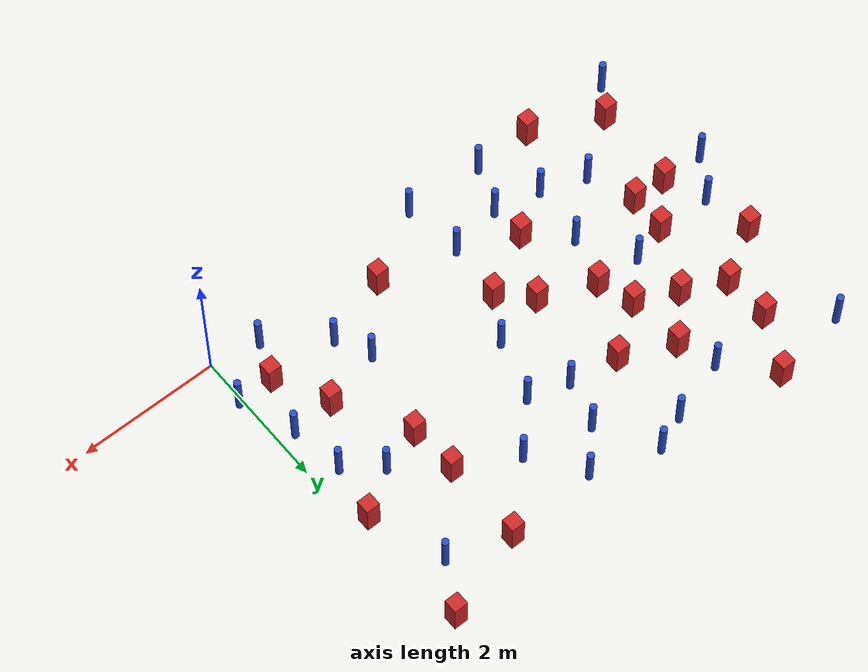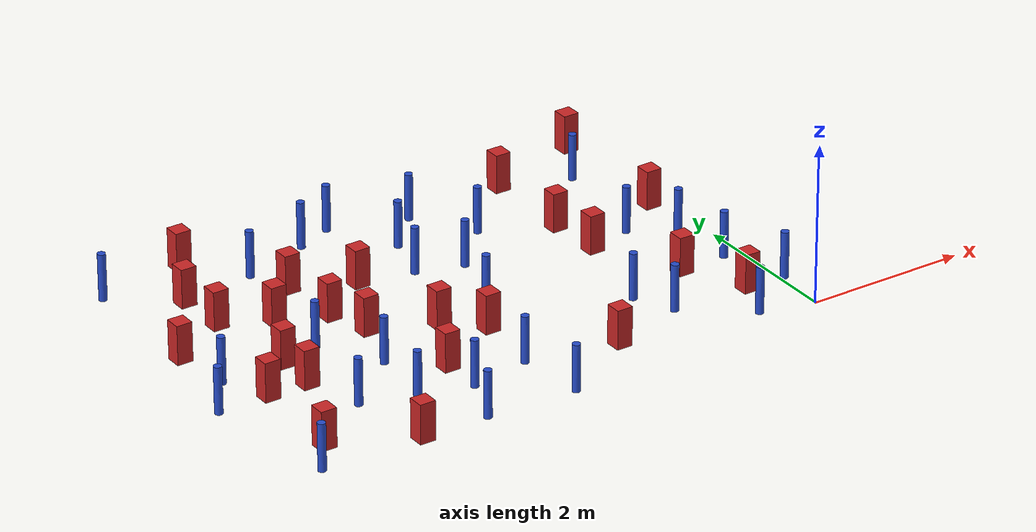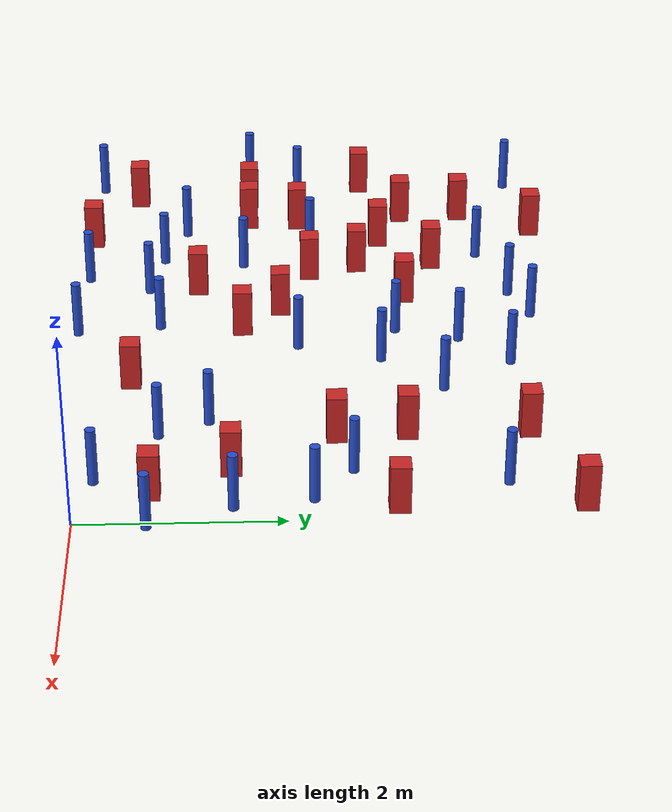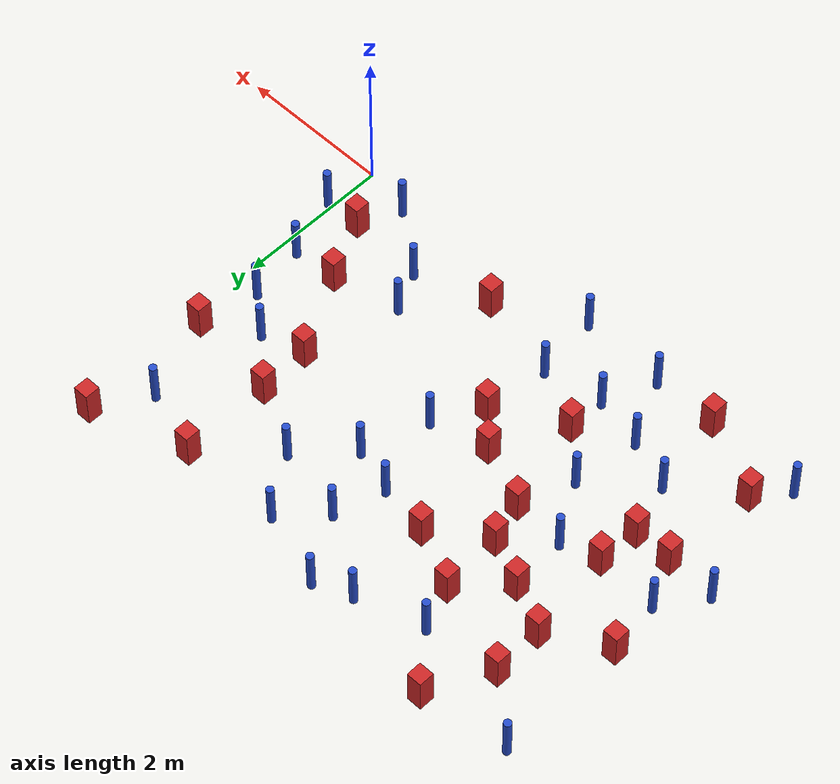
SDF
<sdf version="1.6">
 <model name="dense_94">
  <model name="pole_obstacle1">
   <static>true</static>
   <pose>-6.67899907143 -0.03429082158 -9.47619616065e-06 5.49618799737e-07 2.36310414061e-07 -1.55090534802e-07</pose>
   <link name="link">
    <pose>0 0 0.3 0 -0 0</pose>
    <inertial>
     <mass>1</mass>
     <inertia><ixx>0.145833</ixx><ixy>0</ixy><ixz>0</ixz><iyy>0.145833</iyy><iyz>0</iyz><izz>0.125</izz></inertia>
    </inertial>
    <collision name="collision">
     <geometry><cylinder><radius>0.05</radius><length>.6</length></cylinder></geometry>
    </collision>
    <visual name="visual">
     <geometry><cylinder><radius>0.05</radius><length>.6</length></cylinder></geometry>
     <material>
      <script><name>Gazebo/Blue</name><uri>file://media/materials/scripts/gazebo.material</uri></script>
     </material>
    </visual>
   </link>
  </model>
  <model name="pole_obstacle8">
   <static>true</static>
   <pose>-4.99658444194 4.15690129705 -9.47619616065e-06 5.49618799737e-07 2.36310414037e-07 -1.55090534814e-07</pose>
   <link name="link">
    <pose>0 0 0.3 0 -0 0</pose>
    <inertial>
     <mass>1</mass>
     <inertia><ixx>0.145833</ixx><ixy>0</ixy><ixz>0</ixz><iyy>0.145833</iyy><iyz>0</iyz><izz>0.125</izz></inertia>
    </inertial>
    <collision name="collision">
     <geometry><cylinder><radius>0.05</radius><length>.6</length></cylinder></geometry>
    </collision>
    <visual name="visual">
     <geometry><cylinder><radius>0.05</radius><length>.6</length></cylinder></geometry>
     <material>
      <script><name>Gazebo/Blue</name><uri>file://media/materials/scripts/gazebo.material</uri></script>
     </material>
    </visual>
   </link>
  </model>
  <model name="square_post_obstacle12">
   <static>true</static>
   <pose>-6.30929738894 1.65366719307 -6.11067671241e-07 -5.50515727128e-06 -8.79689657224e-07 2.37013304536e-05</pose>
   <link name="link">
    <pose>0 0 0.25 0 -0 0</pose>
    <inertial>
     <mass>100</mass>
     <inertia>
      <ixx>0.166667</ixx>
      <ixy>0</ixy>
      <ixz>0</ixz>
      <iyy>0.166667</iyy>
      <iyz>0</iyz>
      <izz>0.166667</izz>
     </inertia>
    </inertial>
    <collision name="collision"><geometry><box><size>.2 .2 .5</size></box></geometry></collision>
    <visual name="visual">
     <geometry><box><size>.2 .2 .5</size></box></geometry>
     <material>
      <script><name>Gazebo/Red</name><uri>file://media/materials/scripts/gazebo.material</uri></script>
     </material>
    </visual>
   </link>
  </model>
  <model name="pole_obstacle17">
   <static>true</static>
   <pose>-4.55149239938 -0.0831261099489 -9.47619616065e-06 5.49618799737e-07 2.36310414061e-07 -1.55090534801e-07</pose>
   <link name="link">
    <pose>0 0 0.3 0 -0 0</pose>
    <inertial>
     <mass>1</mass>
     <inertia><ixx>0.145833</ixx><ixy>0</ixy><ixz>0</ixz><iyy>0.145833</iyy><iyz>0</iyz><izz>0.125</izz></inertia>
    </inertial>
    <collision name="collision">
     <geometry><cylinder><radius>0.05</radius><length>.6</length></cylinder></geometry>
    </collision>
    <visual name="visual">
     <geometry><cylinder><radius>0.05</radius><length>.6</length></cylinder></geometry>
     <material>
      <script><name>Gazebo/Blue</name><uri>file://media/materials/scripts/gazebo.material</uri></script>
     </material>
    </visual>
   </link>
  </model>
  <model name="pole_obstacle27">
   <static>true</static>
   <pose>-6.67659318906 4.63356279092 -9.47619616065e-06 5.49618799737e-07 2.36310414037e-07 -1.55090534814e-07</pose>
   <link name="link">
    <pose>0 0 0.3 0 -0 0</pose>
    <inertial>
     <mass>1</mass>
     <inertia><ixx>0.145833</ixx><ixy>0</ixy><ixz>0</ixz><iyy>0.145833</iyy><iyz>0</iyz><izz>0.125</izz></inertia>
    </inertial>
    <collision name="collision">
     <geometry><cylinder><radius>0.05</radius><length>.6</length></cylinder></geometry>
    </collision>
    <visual name="visual">
     <geometry><cylinder><radius>0.05</radius><length>.6</length></cylinder></geometry>
     <material>
      <script><name>Gazebo/Blue</name><uri>file://media/materials/scripts/gazebo.material</uri></script>
     </material>
    </visual>
   </link>
  </model>
  <model name="square_post_obstacle21">
   <static>true</static>
   <pose>-6.67234045474 2.92822538496 -6.11067671241e-07 -5.50515727128e-06 -8.79689657224e-07 2.37013304536e-05</pose>
   <link name="link">
    <pose>0 0 0.25 0 -0 0</pose>
    <inertial>
     <mass>100</mass>
     <inertia>
      <ixx>0.166667</ixx>
      <ixy>0</ixy>
      <ixz>0</ixz>
      <iyy>0.166667</iyy>
      <iyz>0</iyz>
      <izz>0.166667</izz>
     </inertia>
    </inertial>
    <collision name="collision"><geometry><box><size>.2 .2 .5</size></box></geometry></collision>
    <visual name="visual">
     <geometry><box><size>.2 .2 .5</size></box></geometry>
     <material>
      <script><name>Gazebo/Red</name><uri>file://media/materials/scripts/gazebo.material</uri></script>
     </material>
    </visual>
   </link>
  </model>
  <model name="square_post_obstacle24">
   <static>true</static>
   <pose>-1.41695079501 3.17292719952 -6.11067671241e-07 -5.50515727128e-06 -8.79689657224e-07 2.37013304536e-05</pose>
   <link name="link">
    <pose>0 0 0.25 0 -0 0</pose>
    <inertial>
     <mass>100</mass>
     <inertia>
      <ixx>0.166667</ixx>
      <ixy>0</ixy>
      <ixz>0</ixz>
      <iyy>0.166667</iyy>
      <iyz>0</iyz>
      <izz>0.166667</izz>
     </inertia>
    </inertial>
    <collision name="collision"><geometry><box><size>.2 .2 .5</size></box></geometry></collision>
    <visual name="visual">
     <geometry><box><size>.2 .2 .5</size></box></geometry>
     <material>
      <script><name>Gazebo/Red</name><uri>file://media/materials/scripts/gazebo.material</uri></script>
     </material>
    </visual>
   </link>
  </model>
  <model name="pole_obstacle38">
   <static>true</static>
   <pose>-0.332241668047 2.24233493727 -9.47619616065e-06 5.49618799738e-07 2.36310414065e-07 -1.55090534798e-07</pose>
   <link name="link">
    <pose>0 0 0.3 0 -0 0</pose>
    <inertial>
     <mass>1</mass>
     <inertia><ixx>0.145833</ixx><ixy>0</ixy><ixz>0</ixz><iyy>0.145833</iyy><iyz>0</iyz><izz>0.125</izz></inertia>
    </inertial>
    <collision name="collision">
     <geometry><cylinder><radius>0.05</radius><length>.6</length></cylinder></geometry>
    </collision>
    <visual name="visual">
     <geometry><cylinder><radius>0.05</radius><length>.6</length></cylinder></geometry>
     <material>
      <script><name>Gazebo/Blue</name><uri>file://media/materials/scripts/gazebo.material</uri></script>
     </material>
    </visual>
   </link>
  </model>
  <model name="square_post_obstacle31">
   <static>true</static>
   <pose>-0.452214585797 0.706566683898 -6.11067671241e-07 -5.50515727128e-06 -8.79689657224e-07 2.37013304536e-05</pose>
   <link name="link">
    <pose>0 0 0.25 0 -0 0</pose>
    <inertial>
     <mass>100</mass>
     <inertia>
      <ixx>0.166667</ixx>
      <ixy>0</ixy>
      <ixz>0</ixz>
      <iyy>0.166667</iyy>
      <iyz>0</iyz>
      <izz>0.166667</izz>
     </inertia>
    </inertial>
    <collision name="collision"><geometry><box><size>.2 .2 .5</size></box></geometry></collision>
    <visual name="visual">
     <geometry><box><size>.2 .2 .5</size></box></geometry>
     <material>
      <script><name>Gazebo/Red</name><uri>file://media/materials/scripts/gazebo.material</uri></script>
     </material>
    </visual>
   </link>
  </model>
  <model name="pole_obstacle45">
   <static>true</static>
   <pose>-1.43768621948 0.755136957279 -9.47619616065e-06 5.49618799737e-07 2.36310414065e-07 -1.55090534798e-07</pose>
   <link name="link">
    <pose>0 0 0.3 0 -0 0</pose>
    <inertial>
     <mass>1</mass>
     <inertia><ixx>0.145833</ixx><ixy>0</ixy><ixz>0</ixz><iyy>0.145833</iyy><iyz>0</iyz><izz>0.125</izz></inertia>
    </inertial>
    <collision name="collision">
     <geometry><cylinder><radius>0.05</radius><length>.6</length></cylinder></geometry>
    </collision>
    <visual name="visual">
     <geometry><cylinder><radius>0.05</radius><length>.6</length></cylinder></geometry>
     <material>
      <script><name>Gazebo/Blue</name><uri>file://media/materials/scripts/gazebo.material</uri></script>
     </material>
    </visual>
   </link>
  </model>
  <model name="pole_obstacle47">
   <static>true</static>
   <pose>-3.51919926178 0.711389242097 -9.47619616065e-06 5.49618799737e-07 2.36310414035e-07 -1.55090534817e-07</pose>
   <link name="link">
    <pose>0 0 0.3 0 -0 0</pose>
    <inertial>
     <mass>1</mass>
     <inertia><ixx>0.145833</ixx><ixy>0</ixy><ixz>0</ixz><iyy>0.145833</iyy><iyz>0</iyz><izz>0.125</izz></inertia>
    </inertial>
    <collision name="collision">
     <geometry><cylinder><radius>0.05</radius><length>.6</length></cylinder></geometry>
    </collision>
    <visual name="visual">
     <geometry><cylinder><radius>0.05</radius><length>.6</length></cylinder></geometry>
     <material>
      <script><name>Gazebo/Blue</name><uri>file://media/materials/scripts/gazebo.material</uri></script>
     </material>
    </visual>
   </link>
  </model>
  <model name="square_post_obstacle39">
   <static>true</static>
   <pose>-0.19302434435 3.02307327508 -6.11067671241e-07 -5.50515727128e-06 -8.79689657224e-07 2.37013304536e-05</pose>
   <link name="link">
    <pose>0 0 0.25 0 -0 0</pose>
    <inertial>
     <mass>100</mass>
     <inertia>
      <ixx>0.166667</ixx>
      <ixy>0</ixy>
      <ixz>0</ixz>
      <iyy>0.166667</iyy>
      <iyz>0</iyz>
      <izz>0.166667</izz>
     </inertia>
    </inertial>
    <collision name="collision"><geometry><box><size>.2 .2 .5</size></box></geometry></collision>
    <visual name="visual">
     <geometry><box><size>.2 .2 .5</size></box></geometry>
     <material>
      <script><name>Gazebo/Red</name><uri>file://media/materials/scripts/gazebo.material</uri></script>
     </material>
    </visual>
   </link>
  </model>
  <model name="pole_obstacle51">
   <static>true</static>
   <pose>-3.66563914576 4.6199900222 -9.47619616065e-06 5.49618799738e-07 2.3631041406e-07 -1.55090534801e-07</pose>
   <link name="link">
    <pose>0 0 0.3 0 -0 0</pose>
    <inertial>
     <mass>1</mass>
     <inertia><ixx>0.145833</ixx><ixy>0</ixy><ixz>0</ixz><iyy>0.145833</iyy><iyz>0</iyz><izz>0.125</izz></inertia>
    </inertial>
    <collision name="collision">
     <geometry><cylinder><radius>0.05</radius><length>.6</length></cylinder></geometry>
    </collision>
    <visual name="visual">
     <geometry><cylinder><radius>0.05</radius><length>.6</length></cylinder></geometry>
     <material>
      <script><name>Gazebo/Blue</name><uri>file://media/materials/scripts/gazebo.material</uri></script>
     </material>
    </visual>
   </link>
  </model>
  <model name="square_post_obstacle40">
   <static>true</static>
   <pose>-4.29680795318 1.09732461644 -6.11067671241e-07 -5.50515727128e-06 -8.79689657224e-07 2.37013304536e-05</pose>
   <link name="link">
    <pose>0 0 0.25 0 -0 0</pose>
    <inertial>
     <mass>100</mass>
     <inertia>
      <ixx>0.166667</ixx>
      <ixy>0</ixy>
      <ixz>0</ixz>
      <iyy>0.166667</iyy>
      <iyz>0</iyz>
      <izz>0.166667</izz>
     </inertia>
    </inertial>
    <collision name="collision"><geometry><box><size>.2 .2 .5</size></box></geometry></collision>
    <visual name="visual">
     <geometry><box><size>.2 .2 .5</size></box></geometry>
     <material>
      <script><name>Gazebo/Red</name><uri>file://media/materials/scripts/gazebo.material</uri></script>
     </material>
    </visual>
   </link>
  </model>
  <model name="square_post_obstacle49">
   <static>true</static>
   <pose>-1.41972479286 4.36392042772 -6.11067671241e-07 -5.50515727128e-06 -8.79689657224e-07 2.37013304536e-05</pose>
   <link name="link">
    <pose>0 0 0.25 0 -0 0</pose>
    <inertial>
     <mass>100</mass>
     <inertia>
      <ixx>0.166667</ixx>
      <ixy>0</ixy>
      <ixz>0</ixz>
      <iyy>0.166667</iyy>
      <iyz>0</iyz>
      <izz>0.166667</izz>
     </inertia>
    </inertial>
    <collision name="collision"><geometry><box><size>.2 .2 .5</size></box></geometry></collision>
    <visual name="visual">
     <geometry><box><size>.2 .2 .5</size></box></geometry>
     <material>
      <script><name>Gazebo/Red</name><uri>file://media/materials/scripts/gazebo.material</uri></script>
     </material>
    </visual>
   </link>
  </model>
  <model name="pole_obstacle68">
   <static>true</static>
   <pose>-3.41489756486 -0.145336458099 -9.47619616065e-06 5.49618799738e-07 2.36310414078e-07 -1.55090534791e-07</pose>
   <link name="link">
    <pose>0 0 0.3 0 -0 0</pose>
    <inertial>
     <mass>1</mass>
     <inertia><ixx>0.145833</ixx><ixy>0</ixy><ixz>0</ixz><iyy>0.145833</iyy><iyz>0</iyz><izz>0.125</izz></inertia>
    </inertial>
    <collision name="collision">
     <geometry><cylinder><radius>0.05</radius><length>.6</length></cylinder></geometry>
    </collision>
    <visual name="visual">
     <geometry><cylinder><radius>0.05</radius><length>.6</length></cylinder></geometry>
     <material>
      <script><name>Gazebo/Blue</name><uri>file://media/materials/scripts/gazebo.material</uri></script>
     </material>
    </visual>
   </link>
  </model>
  <model name="square_post_obstacle55">
   <static>true</static>
   <pose>-3.83360552042 1.97416597039 -6.11067671241e-07 -5.50515727128e-06 -8.79689657224e-07 2.37013304536e-05</pose>
   <link name="link">
    <pose>0 0 0.25 0 -0 0</pose>
    <inertial>
     <mass>100</mass>
     <inertia>
      <ixx>0.166667</ixx>
      <ixy>0</ixy>
      <ixz>0</ixz>
      <iyy>0.166667</iyy>
      <iyz>0</iyz>
      <izz>0.166667</izz>
     </inertia>
    </inertial>
    <collision name="collision"><geometry><box><size>.2 .2 .5</size></box></geometry></collision>
    <visual name="visual">
     <geometry><box><size>.2 .2 .5</size></box></geometry>
     <material>
      <script><name>Gazebo/Red</name><uri>file://media/materials/scripts/gazebo.material</uri></script>
     </material>
    </visual>
   </link>
  </model>
  <model name="square_post_obstacle61">
   <static>true</static>
   <pose>-5.80478401775 1.64565441938 -6.11067671241e-07 -5.50515727128e-06 -8.79689657224e-07 2.37013304536e-05</pose>
   <link name="link">
    <pose>0 0 0.25 0 -0 0</pose>
    <inertial>
     <mass>100</mass>
     <inertia>
      <ixx>0.166667</ixx>
      <ixy>0</ixy>
      <ixz>0</ixz>
      <iyy>0.166667</iyy>
      <iyz>0</iyz>
      <izz>0.166667</izz>
     </inertia>
    </inertial>
    <collision name="collision"><geometry><box><size>.2 .2 .5</size></box></geometry></collision>
    <visual name="visual">
     <geometry><box><size>.2 .2 .5</size></box></geometry>
     <material>
      <script><name>Gazebo/Red</name><uri>file://media/materials/scripts/gazebo.material</uri></script>
     </material>
    </visual>
   </link>
  </model>
  <model name="pole_obstacle73">
   <static>true</static>
   <pose>-4.13509545801 4.42776585676 -9.47619616065e-06 5.49618799737e-07 2.36310414037e-07 -1.55090534814e-07</pose>
   <link name="link">
    <pose>0 0 0.3 0 -0 0</pose>
    <inertial>
     <mass>1</mass>
     <inertia><ixx>0.145833</ixx><ixy>0</ixy><ixz>0</ixz><iyy>0.145833</iyy><iyz>0</iyz><izz>0.125</izz></inertia>
    </inertial>
    <collision name="collision">
     <geometry><cylinder><radius>0.05</radius><length>.6</length></cylinder></geometry>
    </collision>
    <visual name="visual">
     <geometry><cylinder><radius>0.05</radius><length>.6</length></cylinder></geometry>
     <material>
      <script><name>Gazebo/Blue</name><uri>file://media/materials/scripts/gazebo.material</uri></script>
     </material>
    </visual>
   </link>
  </model>
  <model name="square_post_obstacle64">
   <static>true</static>
   <pose>-0.829074811675 1.46560681043 -6.11067671241e-07 -5.50515727128e-06 -8.79689657224e-07 2.37013304536e-05</pose>
   <link name="link">
    <pose>0 0 0.25 0 -0 0</pose>
    <inertial>
     <mass>100</mass>
     <inertia>
      <ixx>0.166667</ixx>
      <ixy>0</ixy>
      <ixz>0</ixz>
      <iyy>0.166667</iyy>
      <iyz>0</iyz>
      <izz>0.166667</izz>
     </inertia>
    </inertial>
    <collision name="collision"><geometry><box><size>.2 .2 .5</size></box></geometry></collision>
    <visual name="visual">
     <geometry><box><size>.2 .2 .5</size></box></geometry>
     <material>
      <script><name>Gazebo/Red</name><uri>file://media/materials/scripts/gazebo.material</uri></script>
     </material>
    </visual>
   </link>
  </model>
  <model name="pole_obstacle79">
   <static>true</static>
   <pose>-2.71934926652 4.31471729502 -9.47619616065e-06 5.49618799738e-07 2.3631041406e-07 -1.55090534801e-07</pose>
   <link name="link">
    <pose>0 0 0.3 0 -0 0</pose>
    <inertial>
     <mass>1</mass>
     <inertia><ixx>0.145833</ixx><ixy>0</ixy><ixz>0</ixz><iyy>0.145833</iyy><iyz>0</iyz><izz>0.125</izz></inertia>
    </inertial>
    <collision name="collision">
     <geometry><cylinder><radius>0.05</radius><length>.6</length></cylinder></geometry>
    </collision>
    <visual name="visual">
     <geometry><cylinder><radius>0.05</radius><length>.6</length></cylinder></geometry>
     <material>
      <script><name>Gazebo/Blue</name><uri>file://media/materials/scripts/gazebo.material</uri></script>
     </material>
    </visual>
   </link>
  </model>
  <model name="pole_obstacle80">
   <static>true</static>
   <pose>-6.95278286174 1.65966395448 -9.47619616065e-06 5.49618799738e-07 2.36310414071e-07 -1.55090534796e-07</pose>
   <link name="link">
    <pose>0 0 0.3 0 -0 0</pose>
    <inertial>
     <mass>1</mass>
     <inertia><ixx>0.145833</ixx><ixy>0</ixy><ixz>0</ixz><iyy>0.145833</iyy><iyz>0</iyz><izz>0.125</izz></inertia>
    </inertial>
    <collision name="collision">
     <geometry><cylinder><radius>0.05</radius><length>.6</length></cylinder></geometry>
    </collision>
    <visual name="visual">
     <geometry><cylinder><radius>0.05</radius><length>.6</length></cylinder></geometry>
     <material>
      <script><name>Gazebo/Blue</name><uri>file://media/materials/scripts/gazebo.material</uri></script>
     </material>
    </visual>
   </link>
  </model>
  <model name="square_post_obstacle69">
   <static>true</static>
   <pose>-2.40745957402 0.452171727759 -6.11067671241e-07 -5.50515727128e-06 -8.79689657224e-07 2.37013304536e-05</pose>
   <link name="link">
    <pose>0 0 0.25 0 -0 0</pose>
    <inertial>
     <mass>100</mass>
     <inertia>
      <ixx>0.166667</ixx>
      <ixy>0</ixy>
      <ixz>0</ixz>
      <iyy>0.166667</iyy>
      <iyz>0</iyz>
      <izz>0.166667</izz>
     </inertia>
    </inertial>
    <collision name="collision"><geometry><box><size>.2 .2 .5</size></box></geometry></collision>
    <visual name="visual">
     <geometry><box><size>.2 .2 .5</size></box></geometry>
     <material>
      <script><name>Gazebo/Red</name><uri>file://media/materials/scripts/gazebo.material</uri></script>
     </material>
    </visual>
   </link>
  </model>
  <model name="pole_obstacle81">
   <static>true</static>
   <pose>-4.82914749725 1.5846387453 -9.47619616065e-06 5.49618799738e-07 2.36310414071e-07 -1.55090534796e-07</pose>
   <link name="link">
    <pose>0 0 0.3 0 -0 0</pose>
    <inertial>
     <mass>1</mass>
     <inertia><ixx>0.145833</ixx><ixy>0</ixy><ixz>0</ixz><iyy>0.145833</iyy><iyz>0</iyz><izz>0.125</izz></inertia>
    </inertial>
    <collision name="collision">
     <geometry><cylinder><radius>0.05</radius><length>.6</length></cylinder></geometry>
    </collision>
    <visual name="visual">
     <geometry><cylinder><radius>0.05</radius><length>.6</length></cylinder></geometry>
     <material>
      <script><name>Gazebo/Blue</name><uri>file://media/materials/scripts/gazebo.material</uri></script>
     </material>
    </visual>
   </link>
  </model>
  <model name="pole_obstacle83">
   <static>true</static>
   <pose>-2.2327138329 3.59456700948 -9.47619616065e-06 5.49618799737e-07 2.36310414051e-07 -1.55090534807e-07</pose>
   <link name="link">
    <pose>0 0 0.3 0 -0 0</pose>
    <inertial>
     <mass>1</mass>
     <inertia><ixx>0.145833</ixx><ixy>0</ixy><ixz>0</ixz><iyy>0.145833</iyy><iyz>0</iyz><izz>0.125</izz></inertia>
    </inertial>
    <collision name="collision">
     <geometry><cylinder><radius>0.05</radius><length>.6</length></cylinder></geometry>
    </collision>
    <visual name="visual">
     <geometry><cylinder><radius>0.05</radius><length>.6</length></cylinder></geometry>
     <material>
      <script><name>Gazebo/Blue</name><uri>file://media/materials/scripts/gazebo.material</uri></script>
     </material>
    </visual>
   </link>
  </model>
  <model name="square_post_obstacle73">
   <static>true</static>
   <pose>-5.40141067775 -0.0803570759664 -6.11067671241e-07 -5.50515727128e-06 -8.79689657224e-07 2.37013304536e-05</pose>
   <link name="link">
    <pose>0 0 0.25 0 -0 0</pose>
    <inertial>
     <mass>100</mass>
     <inertia>
      <ixx>0.166667</ixx>
      <ixy>0</ixy>
      <ixz>0</ixz>
      <iyy>0.166667</iyy>
      <iyz>0</iyz>
      <izz>0.166667</izz>
     </inertia>
    </inertial>
    <collision name="collision"><geometry><box><size>.2 .2 .5</size></box></geometry></collision>
    <visual name="visual">
     <geometry><box><size>.2 .2 .5</size></box></geometry>
     <material>
      <script><name>Gazebo/Red</name><uri>file://media/materials/scripts/gazebo.material</uri></script>
     </material>
    </visual>
   </link>
  </model>
  <model name="square_post_obstacle86">
   <static>true</static>
   <pose>-5.54675294454 4.80907476312 -6.11067671241e-07 -5.50515727128e-06 -8.79689657224e-07 2.37013304536e-05</pose>
   <link name="link">
    <pose>0 0 0.25 0 -0 0</pose>
    <inertial>
     <mass>100</mass>
     <inertia>
      <ixx>0.166667</ixx>
      <ixy>0</ixy>
      <ixz>0</ixz>
      <iyy>0.166667</iyy>
      <iyz>0</iyz>
      <izz>0.166667</izz>
     </inertia>
    </inertial>
    <collision name="collision"><geometry><box><size>.2 .2 .5</size></box></geometry></collision>
    <visual name="visual">
     <geometry><box><size>.2 .2 .5</size></box></geometry>
     <material>
      <script><name>Gazebo/Red</name><uri>file://media/materials/scripts/gazebo.material</uri></script>
     </material>
    </visual>
   </link>
  </model>
  <model name="pole_obstacle98">
   <static>true</static>
   <pose>-3.38269192491 3.16837766189 -9.47619616065e-06 5.49618799737e-07 2.36310414067e-07 -1.55090534797e-07</pose>
   <link name="link">
    <pose>0 0 0.3 0 -0 0</pose>
    <inertial>
     <mass>1</mass>
     <inertia><ixx>0.145833</ixx><ixy>0</ixy><ixz>0</ixz><iyy>0.145833</iyy><iyz>0</iyz><izz>0.125</izz></inertia>
    </inertial>
    <collision name="collision">
     <geometry><cylinder><radius>0.05</radius><length>.6</length></cylinder></geometry>
    </collision>
    <visual name="visual">
     <geometry><cylinder><radius>0.05</radius><length>.6</length></cylinder></geometry>
     <material>
      <script><name>Gazebo/Blue</name><uri>file://media/materials/scripts/gazebo.material</uri></script>
     </material>
    </visual>
   </link>
  </model>
  <model name="square_post_obstacle95">
   <static>true</static>
   <pose>-4.75753028642 2.81975104585 -6.11067671241e-07 -5.50515727128e-06 -8.79689657224e-07 2.37013304536e-05</pose>
   <link name="link">
    <pose>0 0 0.25 0 -0 0</pose>
    <inertial>
     <mass>100</mass>
     <inertia>
      <ixx>0.166667</ixx>
      <ixy>0</ixy>
      <ixz>0</ixz>
      <iyy>0.166667</iyy>
      <iyz>0</iyz>
      <izz>0.166667</izz>
     </inertia>
    </inertial>
    <collision name="collision"><geometry><box><size>.2 .2 .5</size></box></geometry></collision>
    <visual name="visual">
     <geometry><box><size>.2 .2 .5</size></box></geometry>
     <material>
      <script><name>Gazebo/Red</name><uri>file://media/materials/scripts/gazebo.material</uri></script>
     </material>
    </visual>
   </link>
  </model>
  <model name="square_post_obstacle99">
   <static>true</static>
   <pose>-1.37548124904 2.48120669292 -6.11067671241e-07 -5.50515727128e-06 -8.79689657224e-07 2.37013304536e-05</pose>
   <link name="link">
    <pose>0 0 0.25 0 -0 0</pose>
    <inertial>
     <mass>100</mass>
     <inertia>
      <ixx>0.166667</ixx>
      <ixy>0</ixy>
      <ixz>0</ixz>
      <iyy>0.166667</iyy>
      <iyz>0</iyz>
      <izz>0.166667</izz>
     </inertia>
    </inertial>
    <collision name="collision"><geometry><box><size>.2 .2 .5</size></box></geometry></collision>
    <visual name="visual">
     <geometry><box><size>.2 .2 .5</size></box></geometry>
     <material>
      <script><name>Gazebo/Red</name><uri>file://media/materials/scripts/gazebo.material</uri></script>
     </material>
    </visual>
   </link>
  </model>
  <model name="square_post_obstacle109">
   <static>true</static>
   <pose>-3.43258573546 1.57280296657 -6.11067671241e-07 -5.50515727128e-06 -8.79689657224e-07 2.37013304536e-05</pose>
   <link name="link">
    <pose>0 0 0.25 0 -0 0</pose>
    <inertial>
     <mass>100</mass>
     <inertia>
      <ixx>0.166667</ixx>
      <ixy>0</ixy>
      <ixz>0</ixz>
      <iyy>0.166667</iyy>
      <iyz>0</iyz>
      <izz>0.166667</izz>
     </inertia>
    </inertial>
    <collision name="collision"><geometry><box><size>.2 .2 .5</size></box></geometry></collision>
    <visual name="visual">
     <geometry><box><size>.2 .2 .5</size></box></geometry>
     <material>
      <script><name>Gazebo/Red</name><uri>file://media/materials/scripts/gazebo.material</uri></script>
     </material>
    </visual>
   </link>
  </model>
  <model name="square_post_obstacle115">
   <static>true</static>
   <pose>-5.77399974855 2.19103869768 -6.11067671241e-07 -5.50515727128e-06 -8.79689657224e-07 2.37013304536e-05</pose>
   <link name="link">
    <pose>0 0 0.25 0 -0 0</pose>
    <inertial>
     <mass>100</mass>
     <inertia>
      <ixx>0.166667</ixx>
      <ixy>0</ixy>
      <ixz>0</ixz>
      <iyy>0.166667</iyy>
      <iyz>0</iyz>
      <izz>0.166667</izz>
     </inertia>
    </inertial>
    <collision name="collision"><geometry><box><size>.2 .2 .5</size></box></geometry></collision>
    <visual name="visual">
     <geometry><box><size>.2 .2 .5</size></box></geometry>
     <material>
      <script><name>Gazebo/Red</name><uri>file://media/materials/scripts/gazebo.material</uri></script>
     </material>
    </visual>
   </link>
  </model>
  <model name="pole_obstacle130">
   <static>true</static>
   <pose>-3.07951397155 2.14901054969 -9.47619616065e-06 5.49618799737e-07 2.36310414051e-07 -1.55090534807e-07</pose>
   <link name="link">
    <pose>0 0 0.3 0 -0 0</pose>
    <inertial>
     <mass>1</mass>
     <inertia><ixx>0.145833</ixx><ixy>0</ixy><ixz>0</ixz><iyy>0.145833</iyy><iyz>0</iyz><izz>0.125</izz></inertia>
    </inertial>
    <collision name="collision">
     <geometry><cylinder><radius>0.05</radius><length>.6</length></cylinder></geometry>
    </collision>
    <visual name="visual">
     <geometry><cylinder><radius>0.05</radius><length>.6</length></cylinder></geometry>
     <material>
      <script><name>Gazebo/Blue</name><uri>file://media/materials/scripts/gazebo.material</uri></script>
     </material>
    </visual>
   </link>
  </model>
  <model name="pole_obstacle133">
   <static>true</static>
   <pose>-0.561178136469 4.07933280669 -9.47619616065e-06 5.49618799737e-07 2.36310414065e-07 -1.55090534796e-07</pose>
   <link name="link">
    <pose>0 0 0.3 0 -0 0</pose>
    <inertial>
     <mass>1</mass>
     <inertia><ixx>0.145833</ixx><ixy>0</ixy><ixz>0</ixz><iyy>0.145833</iyy><iyz>0</iyz><izz>0.125</izz></inertia>
    </inertial>
    <collision name="collision">
     <geometry><cylinder><radius>0.05</radius><length>.6</length></cylinder></geometry>
    </collision>
    <visual name="visual">
     <geometry><cylinder><radius>0.05</radius><length>.6</length></cylinder></geometry>
     <material>
      <script><name>Gazebo/Blue</name><uri>file://media/materials/scripts/gazebo.material</uri></script>
     </material>
    </visual>
   </link>
  </model>
  <model name="square_post_obstacle133">
   <static>true</static>
   <pose>-0.177938408902 4.75565873523 -6.11067671241e-07 -5.50515727128e-06 -8.79689657224e-07 2.37013304536e-05</pose>
   <link name="link">
    <pose>0 0 0.25 0 -0 0</pose>
    <inertial>
     <mass>100</mass>
     <inertia>
      <ixx>0.166667</ixx>
      <ixy>0</ixy>
      <ixz>0</ixz>
      <iyy>0.166667</iyy>
      <iyz>0</iyz>
      <izz>0.166667</izz>
     </inertia>
    </inertial>
    <collision name="collision"><geometry><box><size>.2 .2 .5</size></box></geometry></collision>
    <visual name="visual">
     <geometry><box><size>.2 .2 .5</size></box></geometry>
     <material>
      <script><name>Gazebo/Red</name><uri>file://media/materials/scripts/gazebo.material</uri></script>
     </material>
    </visual>
   </link>
  </model>
  <model name="pole_obstacle137">
   <static>true</static>
   <pose>-1.66997476986 1.24416694228 -9.47619616065e-06 5.49618799737e-07 2.36310414065e-07 -1.55090534798e-07</pose>
   <link name="link">
    <pose>0 0 0.3 0 -0 0</pose>
    <inertial>
     <mass>1</mass>
     <inertia><ixx>0.145833</ixx><ixy>0</ixy><ixz>0</ixz><iyy>0.145833</iyy><iyz>0</iyz><izz>0.125</izz></inertia>
    </inertial>
    <collision name="collision">
     <geometry><cylinder><radius>0.05</radius><length>.6</length></cylinder></geometry>
    </collision>
    <visual name="visual">
     <geometry><cylinder><radius>0.05</radius><length>.6</length></cylinder></geometry>
     <material>
      <script><name>Gazebo/Blue</name><uri>file://media/materials/scripts/gazebo.material</uri></script>
     </material>
    </visual>
   </link>
  </model>
  <model name="pole_obstacle139">
   <static>true</static>
   <pose>0.0615420245437 0.689907572316 -9.47619616065e-06 5.49618799737e-07 2.36310414057e-07 -1.55090534801e-07</pose>
   <link name="link">
    <pose>0 0 0.3 0 -0 0</pose>
    <inertial>
     <mass>1</mass>
     <inertia><ixx>0.145833</ixx><ixy>0</ixy><ixz>0</ixz><iyy>0.145833</iyy><iyz>0</iyz><izz>0.125</izz></inertia>
    </inertial>
    <collision name="collision">
     <geometry><cylinder><radius>0.05</radius><length>.6</length></cylinder></geometry>
    </collision>
    <visual name="visual">
     <geometry><cylinder><radius>0.05</radius><length>.6</length></cylinder></geometry>
     <material>
      <script><name>Gazebo/Blue</name><uri>file://media/materials/scripts/gazebo.material</uri></script>
     </material>
    </visual>
   </link>
  </model>
  <model name="pole_obstacle142">
   <static>true</static>
   <pose>-0.671343791677 0.166572233977 -9.47619616065e-06 5.49618799737e-07 2.36310414066e-07 -1.55090534796e-07</pose>
   <link name="link">
    <pose>0 0 0.3 0 -0 0</pose>
    <inertial>
     <mass>1</mass>
     <inertia><ixx>0.145833</ixx><ixy>0</ixy><ixz>0</ixz><iyy>0.145833</iyy><iyz>0</iyz><izz>0.125</izz></inertia>
    </inertial>
    <collision name="collision">
     <geometry><cylinder><radius>0.05</radius><length>.6</length></cylinder></geometry>
    </collision>
    <visual name="visual">
     <geometry><cylinder><radius>0.05</radius><length>.6</length></cylinder></geometry>
     <material>
      <script><name>Gazebo/Blue</name><uri>file://media/materials/scripts/gazebo.material</uri></script>
     </material>
    </visual>
   </link>
  </model>
  <model name="pole_obstacle145">
   <static>true</static>
   <pose>-4.94904557268 0.719263074853 -9.47619616065e-06 5.49618799737e-07 2.36310414061e-07 -1.550905348e-07</pose>
   <link name="link">
    <pose>0 0 0.3 0 -0 0</pose>
    <inertial>
     <mass>1</mass>
     <inertia><ixx>0.145833</ixx><ixy>0</ixy><ixz>0</ixz><iyy>0.145833</iyy><iyz>0</iyz><izz>0.125</izz></inertia>
    </inertial>
    <collision name="collision">
     <geometry><cylinder><radius>0.05</radius><length>.6</length></cylinder></geometry>
    </collision>
    <visual name="visual">
     <geometry><cylinder><radius>0.05</radius><length>.6</length></cylinder></geometry>
     <material>
      <script><name>Gazebo/Blue</name><uri>file://media/materials/scripts/gazebo.material</uri></script>
     </material>
    </visual>
   </link>
  </model>
  <model name="square_post_obstacle142">
   <static>true</static>
   <pose>-4.60038494872 2.30065681788 -6.11067671241e-07 -5.50515727128e-06 -8.79689657224e-07 2.37013304536e-05</pose>
   <link name="link">
    <pose>0 0 0.25 0 -0 0</pose>
    <inertial>
     <mass>100</mass>
     <inertia>
      <ixx>0.166667</ixx>
      <ixy>0</ixy>
      <ixz>0</ixz>
      <iyy>0.166667</iyy>
      <iyz>0</iyz>
      <izz>0.166667</izz>
     </inertia>
    </inertial>
    <collision name="collision"><geometry><box><size>.2 .2 .5</size></box></geometry></collision>
    <visual name="visual">
     <geometry><box><size>.2 .2 .5</size></box></geometry>
     <material>
      <script><name>Gazebo/Red</name><uri>file://media/materials/scripts/gazebo.material</uri></script>
     </material>
    </visual>
   </link>
  </model>
  <model name="pole_obstacle156">
   <static>true</static>
   <pose>-6.57302338177 2.21254058671 -9.47619616065e-06 5.49618799738e-07 2.36310414051e-07 -1.55090534805e-07</pose>
   <link name="link">
    <pose>0 0 0.3 0 -0 0</pose>
    <inertial>
     <mass>1</mass>
     <inertia><ixx>0.145833</ixx><ixy>0</ixy><ixz>0</ixz><iyy>0.145833</iyy><iyz>0</iyz><izz>0.125</izz></inertia>
    </inertial>
    <collision name="collision">
     <geometry><cylinder><radius>0.05</radius><length>.6</length></cylinder></geometry>
    </collision>
    <visual name="visual">
     <geometry><cylinder><radius>0.05</radius><length>.6</length></cylinder></geometry>
     <material>
      <script><name>Gazebo/Blue</name><uri>file://media/materials/scripts/gazebo.material</uri></script>
     </material>
    </visual>
   </link>
  </model>
  <model name="pole_obstacle160">
   <static>true</static>
   <pose>-5.27182141052 2.32277845484 -9.47619616065e-06 5.49618799738e-07 2.36310414051e-07 -1.55090534805e-07</pose>
   <link name="link">
    <pose>0 0 0.3 0 -0 0</pose>
    <inertial>
     <mass>1</mass>
     <inertia><ixx>0.145833</ixx><ixy>0</ixy><ixz>0</ixz><iyy>0.145833</iyy><iyz>0</iyz><izz>0.125</izz></inertia>
    </inertial>
    <collision name="collision">
     <geometry><cylinder><radius>0.05</radius><length>.6</length></cylinder></geometry>
    </collision>
    <visual name="visual">
     <geometry><cylinder><radius>0.05</radius><length>.6</length></cylinder></geometry>
     <material>
      <script><name>Gazebo/Blue</name><uri>file://media/materials/scripts/gazebo.material</uri></script>
     </material>
    </visual>
   </link>
  </model>
  <model name="square_post_obstacle156">
   <static>true</static>
   <pose>-5.92648466978 3.36571086974 -6.11067671241e-07 -5.50515727128e-06 -8.79689657224e-07 2.37013304536e-05</pose>
   <link name="link">
    <pose>0 0 0.25 0 -0 0</pose>
    <inertial>
     <mass>100</mass>
     <inertia>
      <ixx>0.166667</ixx>
      <ixy>0</ixy>
      <ixz>0</ixz>
      <iyy>0.166667</iyy>
      <iyz>0</iyz>
      <izz>0.166667</izz>
     </inertia>
    </inertial>
    <collision name="collision"><geometry><box><size>.2 .2 .5</size></box></geometry></collision>
    <visual name="visual">
     <geometry><box><size>.2 .2 .5</size></box></geometry>
     <material>
      <script><name>Gazebo/Red</name><uri>file://media/materials/scripts/gazebo.material</uri></script>
     </material>
    </visual>
   </link>
  </model>
  <model name="square_post_obstacle162">
   <static>true</static>
   <pose>-5.94903880034 4.0279035705 -6.11067671241e-07 -5.50515727128e-06 -8.79689657224e-07 2.37013304536e-05</pose>
   <link name="link">
    <pose>0 0 0.25 0 -0 0</pose>
    <inertial>
     <mass>100</mass>
     <inertia>
      <ixx>0.166667</ixx>
      <ixy>0</ixy>
      <ixz>0</ixz>
      <iyy>0.166667</iyy>
      <iyz>0</iyz>
      <izz>0.166667</izz>
     </inertia>
    </inertial>
    <collision name="collision"><geometry><box><size>.2 .2 .5</size></box></geometry></collision>
    <visual name="visual">
     <geometry><box><size>.2 .2 .5</size></box></geometry>
     <material>
      <script><name>Gazebo/Red</name><uri>file://media/materials/scripts/gazebo.material</uri></script>
     </material>
    </visual>
   </link>
  </model>
  <model name="square_post_obstacle165">
   <static>true</static>
   <pose>-5.33637763638 3.08195783267 -6.11067671241e-07 -5.50515727128e-06 -8.79689657224e-07 2.37013304536e-05</pose>
   <link name="link">
    <pose>0 0 0.25 0 -0 0</pose>
    <inertial>
     <mass>100</mass>
     <inertia>
      <ixx>0.166667</ixx>
      <ixy>0</ixy>
      <ixz>0</ixz>
      <iyy>0.166667</iyy>
      <iyz>0</iyz>
      <izz>0.166667</izz>
     </inertia>
    </inertial>
    <collision name="collision"><geometry><box><size>.2 .2 .5</size></box></geometry></collision>
    <visual name="visual">
     <geometry><box><size>.2 .2 .5</size></box></geometry>
     <material>
      <script><name>Gazebo/Red</name><uri>file://media/materials/scripts/gazebo.material</uri></script>
     </material>
    </visual>
   </link>
  </model>
  <model name="square_post_obstacle170">
   <static>true</static>
   <pose>-4.07381450474 3.29892910013 -6.11067671241e-07 -5.50515727128e-06 -8.79689657224e-07 2.37013304536e-05</pose>
   <link name="link">
    <pose>0 0 0.25 0 -0 0</pose>
    <inertial>
     <mass>100</mass>
     <inertia>
      <ixx>0.166667</ixx>
      <ixy>0</ixy>
      <ixz>0</ixz>
      <iyy>0.166667</iyy>
      <iyz>0</iyz>
      <izz>0.166667</izz>
     </inertia>
    </inertial>
    <collision name="collision"><geometry><box><size>.2 .2 .5</size></box></geometry></collision>
    <visual name="visual">
     <geometry><box><size>.2 .2 .5</size></box></geometry>
     <material>
      <script><name>Gazebo/Red</name><uri>file://media/materials/scripts/gazebo.material</uri></script>
     </material>
    </visual>
   </link>
  </model>
  <model name="square_post_obstacle180">
   <static>true</static>
   <pose>-6.37635182449 0.393923525514 -6.11067671241e-07 -5.50515727128e-06 -8.79689657224e-07 2.37013304536e-05</pose>
   <link name="link">
    <pose>0 0 0.25 0 -0 0</pose>
    <inertial>
     <mass>100</mass>
     <inertia>
      <ixx>0.166667</ixx>
      <ixy>0</ixy>
      <ixz>0</ixz>
      <iyy>0.166667</iyy>
      <iyz>0</iyz>
      <izz>0.166667</izz>
     </inertia>
    </inertial>
    <collision name="collision"><geometry><box><size>.2 .2 .5</size></box></geometry></collision>
    <visual name="visual">
     <geometry><box><size>.2 .2 .5</size></box></geometry>
     <material>
      <script><name>Gazebo/Red</name><uri>file://media/materials/scripts/gazebo.material</uri></script>
     </material>
    </visual>
   </link>
  </model>
  <model name="pole_obstacle189">
   <static>true</static>
   <pose>-2.80910351754 2.99186385845 -9.47619616065e-06 5.49618799737e-07 2.36310414051e-07 -1.55090534807e-07</pose>
   <link name="link">
    <pose>0 0 0.3 0 -0 0</pose>
    <inertial>
     <mass>1</mass>
     <inertia><ixx>0.145833</ixx><ixy>0</ixy><ixz>0</ixz><iyy>0.145833</iyy><iyz>0</iyz><izz>0.125</izz></inertia>
    </inertial>
    <collision name="collision">
     <geometry><cylinder><radius>0.05</radius><length>.6</length></cylinder></geometry>
    </collision>
    <visual name="visual">
     <geometry><cylinder><radius>0.05</radius><length>.6</length></cylinder></geometry>
     <material>
      <script><name>Gazebo/Blue</name><uri>file://media/materials/scripts/gazebo.material</uri></script>
     </material>
    </visual>
   </link>
  </model>
  <model name="square_post_obstacle205">
   <static>true</static>
   <pose>-4.80511974271 3.63606771935 -6.11067671241e-07 -5.50515727128e-06 -8.79689657224e-07 2.37013304536e-05</pose>
   <link name="link">
    <pose>0 0 0.25 0 -0 0</pose>
    <inertial>
     <mass>100</mass>
     <inertia>
      <ixx>0.166667</ixx>
      <ixy>0</ixy>
      <ixz>0</ixz>
      <iyy>0.166667</iyy>
      <iyz>0</iyz>
      <izz>0.166667</izz>
     </inertia>
    </inertial>
    <collision name="collision"><geometry><box><size>.2 .2 .5</size></box></geometry></collision>
    <visual name="visual">
     <geometry><box><size>.2 .2 .5</size></box></geometry>
     <material>
      <script><name>Gazebo/Red</name><uri>file://media/materials/scripts/gazebo.material</uri></script>
     </material>
    </visual>
   </link>
  </model>
  <model name="pole_obstacle195">
   <static>true</static>
   <pose>-4.28554416882 0.573074767534 -9.47619616065e-06 5.49618799737e-07 2.36310414061e-07 -1.550905348e-07</pose>
   <link name="link">
    <pose>0 0 0.3 0 -0 0</pose>
    <inertial>
     <mass>1</mass>
     <inertia><ixx>0.145833</ixx><ixy>0</ixy><ixz>0</ixz><iyy>0.145833</iyy><iyz>0</iyz><izz>0.125</izz></inertia>
    </inertial>
    <collision name="collision">
     <geometry><cylinder><radius>0.05</radius><length>.6</length></cylinder></geometry>
    </collision>
    <visual name="visual">
     <geometry><cylinder><radius>0.05</radius><length>.6</length></cylinder></geometry>
     <material>
      <script><name>Gazebo/Blue</name><uri>file://media/materials/scripts/gazebo.material</uri></script>
     </material>
    </visual>
   </link>
  </model>
  <model name="pole_obstacle201">
   <static>true</static>
   <pose>-0.218303275794 1.48767716056 -9.47619616065e-06 5.49618799738e-07 2.36310414065e-07 -1.55090534798e-07</pose>
   <link name="link">
    <pose>0 0 0.3 0 -0 0</pose>
    <inertial>
     <mass>1</mass>
     <inertia><ixx>0.145833</ixx><ixy>0</ixy><ixz>0</ixz><iyy>0.145833</iyy><iyz>0</iyz><izz>0.125</izz></inertia>
    </inertial>
    <collision name="collision">
     <geometry><cylinder><radius>0.05</radius><length>.6</length></cylinder></geometry>
    </collision>
    <visual name="visual">
     <geometry><cylinder><radius>0.05</radius><length>.6</length></cylinder></geometry>
     <material>
      <script><name>Gazebo/Blue</name><uri>file://media/materials/scripts/gazebo.material</uri></script>
     </material>
    </visual>
   </link>
  </model>
  <model name="pole_obstacle212">
   <static>true</static>
   <pose>-3.19096041505 3.81621968908 -9.47619616065e-06 5.49618799737e-07 2.36310414067e-07 -1.55090534797e-07</pose>
   <link name="link">
    <pose>0 0 0.3 0 -0 0</pose>
    <inertial>
     <mass>1</mass>
     <inertia><ixx>0.145833</ixx><ixy>0</ixy><ixz>0</ixz><iyy>0.145833</iyy><iyz>0</iyz><izz>0.125</izz></inertia>
    </inertial>
    <collision name="collision">
     <geometry><cylinder><radius>0.05</radius><length>.6</length></cylinder></geometry>
    </collision>
    <visual name="visual">
     <geometry><cylinder><radius>0.05</radius><length>.6</length></cylinder></geometry>
     <material>
      <script><name>Gazebo/Blue</name><uri>file://media/materials/scripts/gazebo.material</uri></script>
     </material>
    </visual>
   </link>
  </model>
  <model name="pole_obstacle214">
   <static>true</static>
   <pose>-5.57579010704 0.952882455673 -9.47619616065e-06 5.49618799737e-07 2.36310414073e-07 -1.55090534792e-07</pose>
   <link name="link">
    <pose>0 0 0.3 0 -0 0</pose>
    <inertial>
     <mass>1</mass>
     <inertia><ixx>0.145833</ixx><ixy>0</ixy><ixz>0</ixz><iyy>0.145833</iyy><iyz>0</iyz><izz>0.125</izz></inertia>
    </inertial>
    <collision name="collision">
     <geometry><cylinder><radius>0.05</radius><length>.6</length></cylinder></geometry>
    </collision>
    <visual name="visual">
     <geometry><cylinder><radius>0.05</radius><length>.6</length></cylinder></geometry>
     <material>
      <script><name>Gazebo/Blue</name><uri>file://media/materials/scripts/gazebo.material</uri></script>
     </material>
    </visual>
   </link>
  </model>
  <model name="pole_obstacle217">
   <static>true</static>
   <pose>-0.798769990611 2.62626002078 -9.4761961606e-06 5.49618799729e-07 2.36310414008e-07 -1.55090534818e-07</pose>
   <link name="link">
    <pose>0 0 0.3 0 -0 0</pose>
    <inertial>
     <mass>1</mass>
     <inertia><ixx>0.145833</ixx><ixy>0</ixy><ixz>0</ixz><iyy>0.145833</iyy><iyz>0</iyz><izz>0.125</izz></inertia>
    </inertial>
    <collision name="collision">
     <geometry><cylinder><radius>0.05</radius><length>.6</length></cylinder></geometry>
    </collision>
    <visual name="visual">
     <geometry><cylinder><radius>0.05</radius><length>.6</length></cylinder></geometry>
     <material>
      <script><name>Gazebo/Blue</name><uri>file://media/materials/scripts/gazebo.material</uri></script>
     </material>
    </visual>
   </link>
  </model>
 </model>
</sdf>
